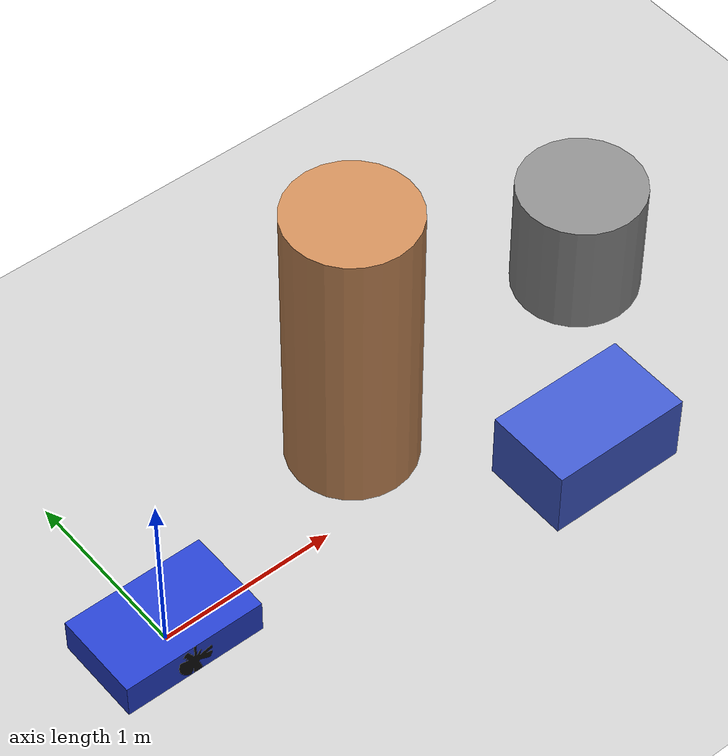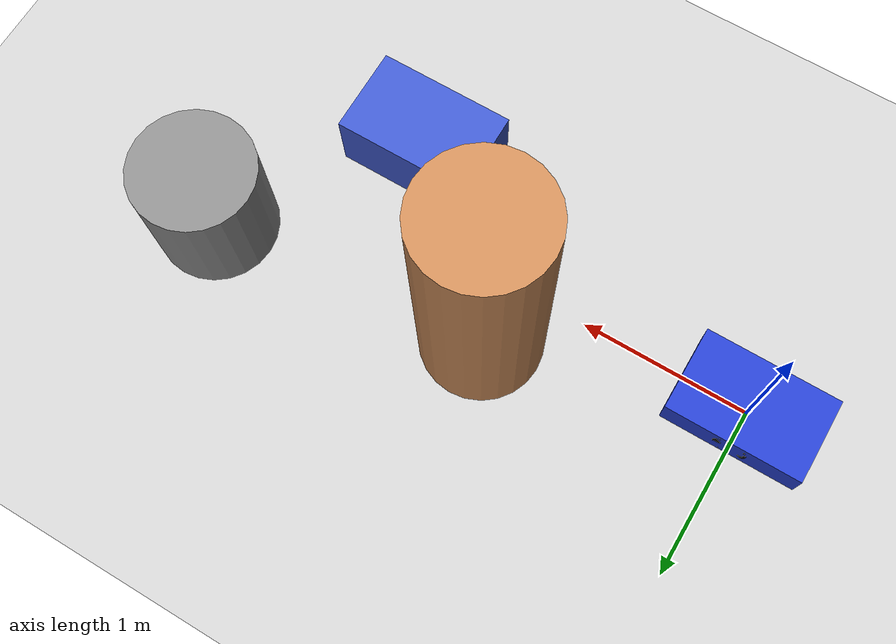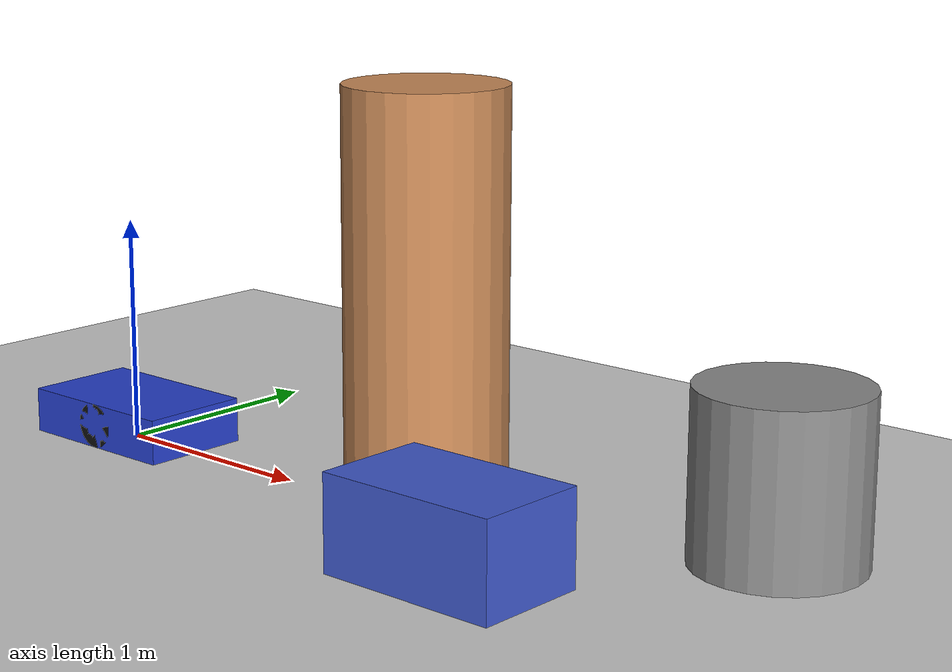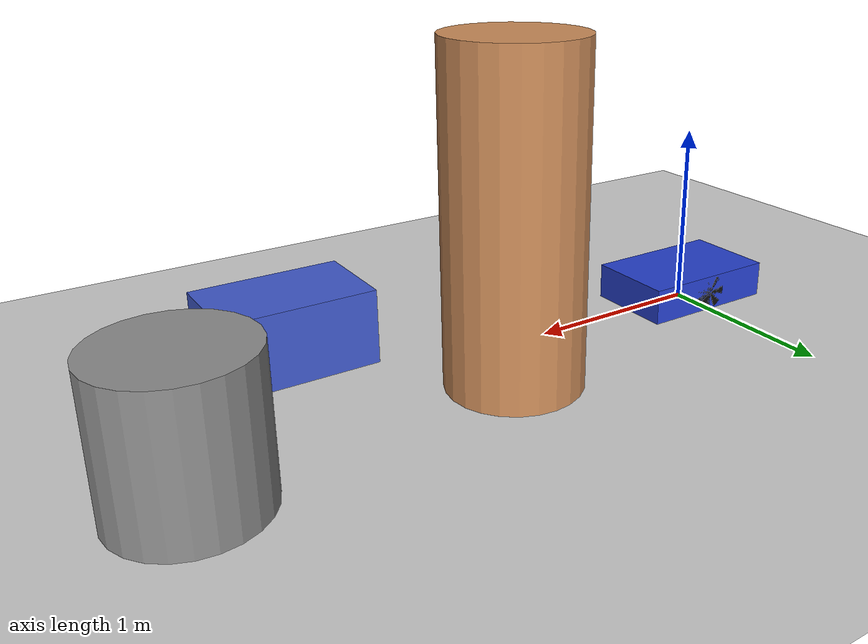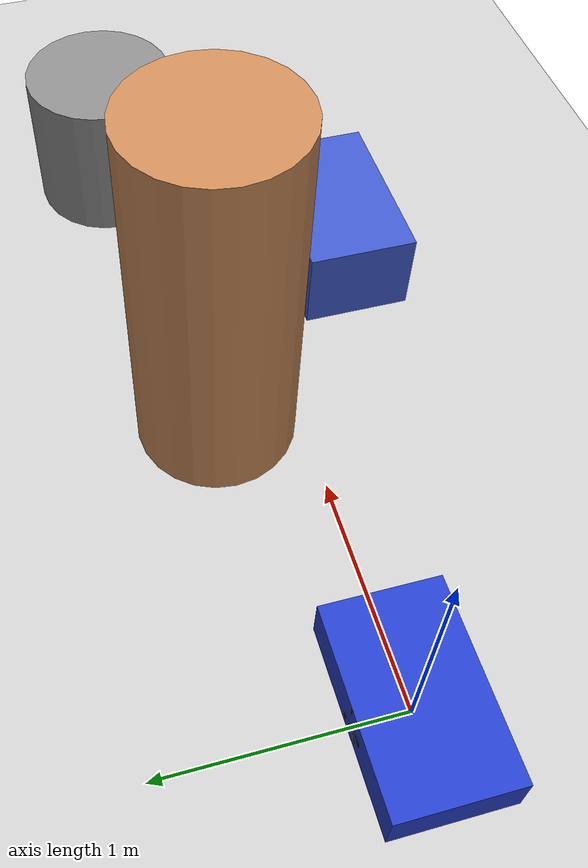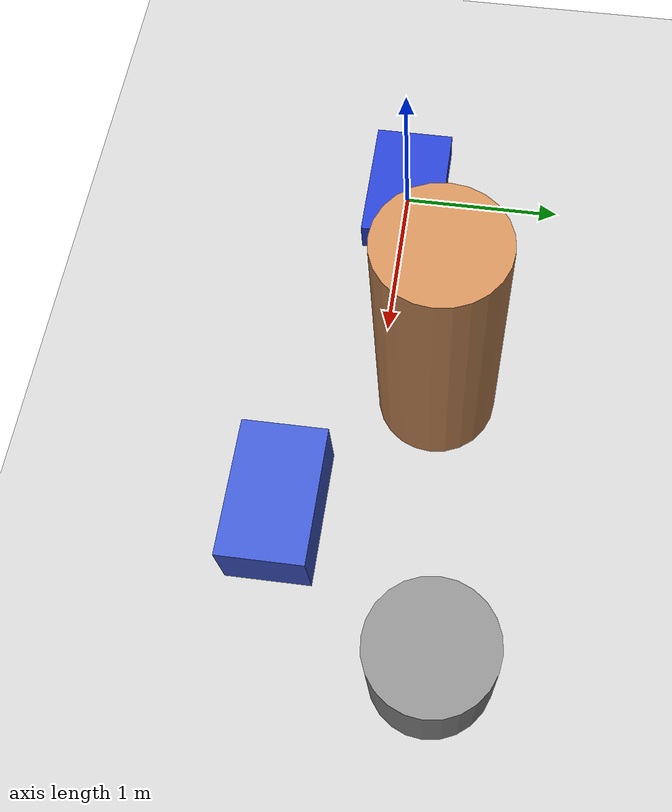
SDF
<?xml version='1.0'?>
<sdf version='1.9'><world name='stage15_mixed_random_1018'><gravity>0 0 -9.81</gravity>
<plugin filename='gz-sim-physics-system' name='gz::sim::systems::Physics'/>
<plugin filename='gz-sim-user-commands-system' name='gz::sim::systems::UserCommands'/>
<plugin filename='gz-sim-scene-broadcaster-system' name='gz::sim::systems::SceneBroadcaster'/>
<plugin filename='gz-sim-sensors-system' name='gz::sim::systems::Sensors'><render_engine>ogre2</render_engine></plugin>
<model name='ground_plane'><static>true</static><link name='ground'><collision name='collision'><geometry><plane><normal>0 0 1</normal><size>20 20</size></plane></geometry></collision><visual name='visual'><geometry><plane><normal>0 0 1</normal><size>20 20</size></plane></geometry></visual></link></model>
<include><uri>model://sgcf_diff_drive_robot</uri><name>sgcf_robot</name><pose>0 0 0 0 0 0</pose></include>
<include><uri>model://static_cylinder</uri><name>static_01</name><pose>3.1 0.5245535426891239 0.35 0 0 0</pose></include>
<include><uri>model://human_placeholder</uri><name>human_01</name><pose>1.45 0.36504957925311055 0.85 0 0 0</pose></include>
<include><uri>model://vehicle_placeholder</uri><name>vehicle_01</name><pose>2.3 -0.44982463818728874 0.2 0 0 0</pose></include>
</world></sdf>

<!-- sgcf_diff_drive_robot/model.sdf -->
<sdf version='1.9'><model name='sgcf_diff_drive_robot'><static>false</static>
<link name='base_footprint'/><link name='base_link'><pose relative_to='base_footprint'>0 0 0.1 0 0 0</pose><inertial><mass>20</mass><inertia><ixx>0.5</ixx><iyy>0.8</iyy><izz>1.0</izz></inertia></inertial><collision name='planner_footprint_collision'><geometry><box><size>0.8 0.5 0.2</size></box></geometry><surface><friction><ode><mu>0</mu><mu2>0</mu2></ode></friction></surface></collision><visual name='body'><geometry><box><size>0.8 0.5 0.2</size></box></geometry><material><diffuse>0.15 0.25 0.8 1</diffuse></material><visibility_flags>2</visibility_flags></visual></link>
<joint name='base_footprint_to_base_link' type='fixed'><parent>base_footprint</parent><child>base_link</child></joint>
<link name='left_wheel_link'><pose relative_to='base_link'>0 0.25 0 0 0 0</pose><inertial><mass>1</mass><inertia><ixx>0.0027083333333333334</ixx><iyy>0.005</iyy><izz>0.0027083333333333334</izz></inertia></inertial><collision name='left_wheel_collision'><pose>0 -0.025 0 1.5707963267948966 0 0</pose><geometry><cylinder><radius>0.1</radius><length>0.05</length></cylinder></geometry><surface><friction><ode><mu>1</mu><mu2>1</mu2></ode></friction></surface></collision><visual name='left_wheel_visual'><pose>0 -0.025 0 1.5707963267948966 0 0</pose><geometry><cylinder><radius>0.1</radius><length>0.05</length></cylinder></geometry><material><diffuse>0.05 0.05 0.05 1</diffuse></material><visibility_flags>2</visibility_flags></visual></link>
<link name='right_wheel_link'><pose relative_to='base_link'>0 -0.25 0 0 0 0</pose><inertial><mass>1</mass><inertia><ixx>0.0027083333333333334</ixx><iyy>0.005</iyy><izz>0.0027083333333333334</izz></inertia></inertial><collision name='right_wheel_collision'><pose>0 0.025 0 1.5707963267948966 0 0</pose><geometry><cylinder><radius>0.1</radius><length>0.05</length></cylinder></geometry><surface><friction><ode><mu>1</mu><mu2>1</mu2></ode></friction></surface></collision><visual name='right_wheel_visual'><pose>0 0.025 0 1.5707963267948966 0 0</pose><geometry><cylinder><radius>0.1</radius><length>0.05</length></cylinder></geometry><material><diffuse>0.05 0.05 0.05 1</diffuse></material><visibility_flags>2</visibility_flags></visual></link>
<joint name='left_wheel_joint' type='revolute'><parent>base_link</parent><child>left_wheel_link</child><axis><xyz>0 1 0</xyz><limit><lower>-1e16</lower><upper>1e16</upper><velocity>10</velocity><effort>100</effort></limit></axis></joint>
<joint name='right_wheel_joint' type='revolute'><parent>base_link</parent><child>right_wheel_link</child><axis><xyz>0 1 0</xyz><limit><lower>-1e16</lower><upper>1e16</upper><velocity>10</velocity><effort>100</effort></limit></axis></joint>
<link name='lidar_link'><pose relative_to='base_link'>0 0 0.1 0 0 0</pose><sensor name='lidar' type='gpu_lidar'><always_on>true</always_on><update_rate>10</update_rate><topic>/scan</topic><lidar><scan><horizontal><samples>181</samples><resolution>1</resolution><min_angle>-3.141592653589793</min_angle><max_angle>3.141592653589793</max_angle></horizontal></scan><range><min>0.05</min><max>8.0</max><resolution>0.001</resolution></range><noise><type>gaussian</type><mean>0</mean><stddev>0</stddev></noise><visibility_mask>4294967293</visibility_mask></lidar></sensor></link><joint name='lidar_fixed' type='fixed'><parent>base_link</parent><child>lidar_link</child></joint>
<link name='camera_link'><pose relative_to='base_link'>0 0 0.9 0 0 0</pose><sensor name='rgb_camera' type='camera'><always_on>true</always_on><update_rate>10</update_rate><topic>/camera/image_raw</topic><camera><horizontal_fov>1.453284681363431</horizontal_fov><image><width>320</width><height>240</height><format>R8G8B8</format></image><clip><near>0.05</near><far>20</far></clip></camera></sensor></link><joint name='camera_fixed' type='fixed'><parent>base_link</parent><child>camera_link</child></joint>
<frame name='camera_optical_frame' attached_to='camera_link'><pose relative_to='camera_link'>0 0 0 -1.5707963267948966 0 -1.5707963267948966</pose></frame>
<plugin filename='gz-sim-diff-drive-system' name='gz::sim::systems::DiffDrive'><left_joint>left_wheel_joint</left_joint><right_joint>right_wheel_joint</right_joint><wheel_separation>0.5</wheel_separation><wheel_radius>0.1</wheel_radius><odom_publish_frequency>50</odom_publish_frequency><topic>/cmd_vel</topic><odom_topic>/odom</odom_topic><tf_topic>/tf</tf_topic><frame_id>odom</frame_id><child_frame_id>base_link</child_frame_id><max_linear_velocity>1.0</max_linear_velocity><max_angular_velocity>1.5</max_angular_velocity></plugin>
</model></sdf>

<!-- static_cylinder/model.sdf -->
<sdf version='1.9'><model name='static_cylinder'><static>true</static><link name='body'><collision name='collision'><geometry><cylinder><radius>0.35</radius><length>0.7</length></cylinder></geometry></collision><visual name='visual'><geometry><cylinder><radius>0.35</radius><length>0.7</length></cylinder></geometry><material><diffuse>0.55 0.55 0.55 1</diffuse></material></visual></link></model></sdf>

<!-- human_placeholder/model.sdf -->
<sdf version='1.9'><model name='human_placeholder'><static>true</static><link name='body'><collision name='collision'><geometry><cylinder><radius>0.35</radius><length>1.7</length></cylinder></geometry></collision><visual name='visual'><geometry><cylinder><radius>0.35</radius><length>1.7</length></cylinder></geometry><material><diffuse>0.8 0.55 0.35 1</diffuse></material></visual></link></model></sdf>

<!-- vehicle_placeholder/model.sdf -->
<sdf version='1.9'><model name='vehicle_placeholder'><static>true</static><link name='body'><collision name='collision'><geometry><box><size>0.8 0.5 0.4</size></box></geometry></collision><visual name='visual'><geometry><box><size>0.8 0.5 0.4</size></box></geometry><material><diffuse>0.25 0.35 0.8 1</diffuse></material></visual></link></model></sdf>
